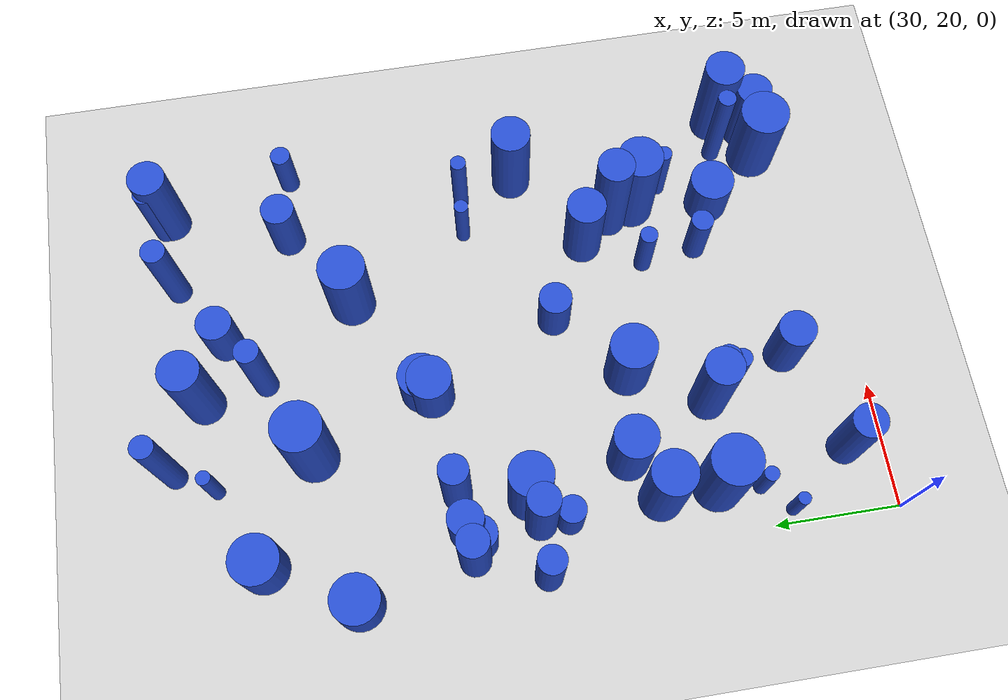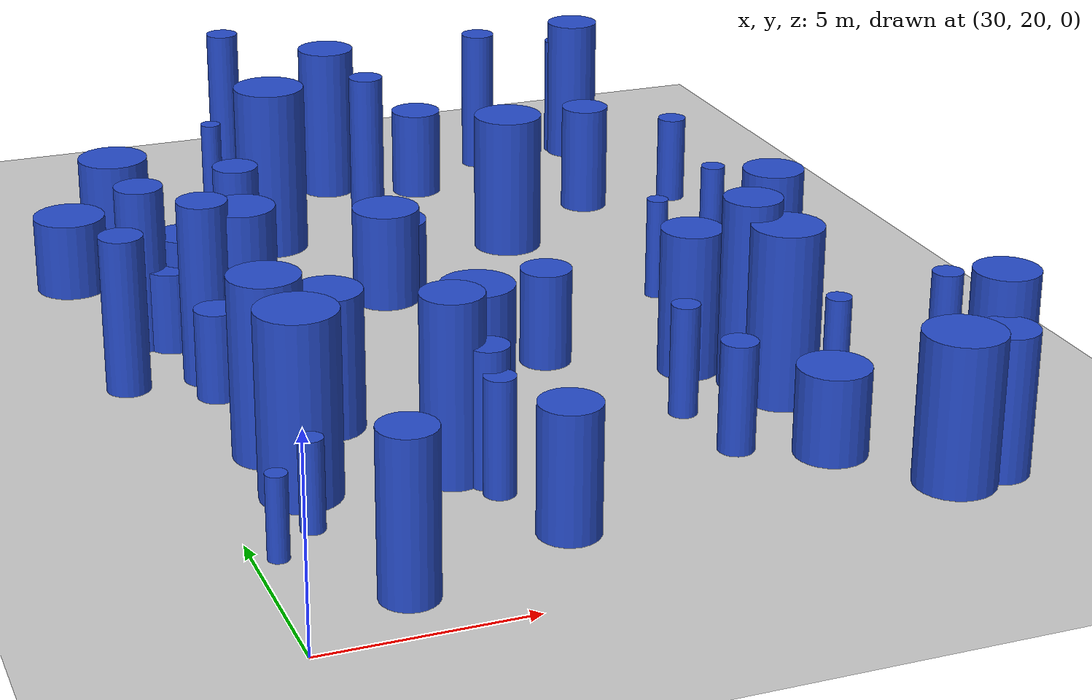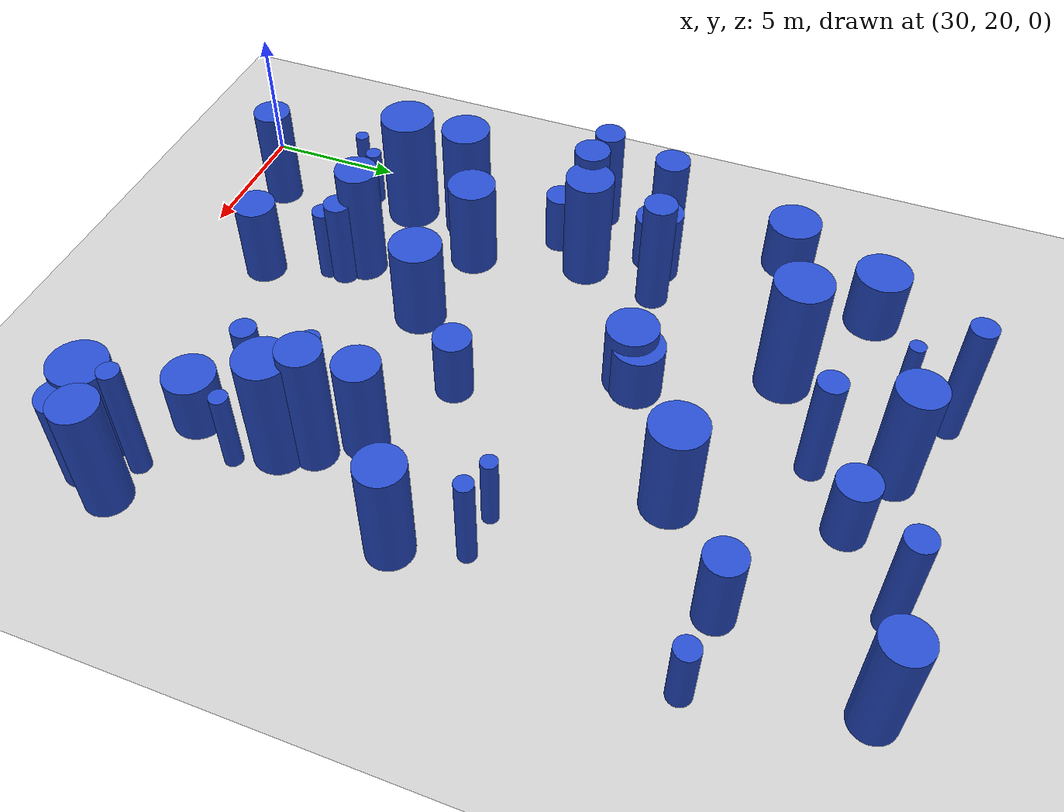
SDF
<sdf version="1.6">
 <world name="default">
  <model name="ground_plane">
   <static>1</static>
   <link name="link">
    <collision name="collision">
     <geometry><plane><normal>0 0 1</normal><size>100 100</size></plane></geometry>
     <surface><friction><ode><mu>100</mu><mu2>50</mu2></ode></friction></surface>
    </collision>
    <visual name="visual">
     <cast_shadows>0</cast_shadows>
     <geometry><plane><normal>0 0 1</normal><size>100 100</size></plane></geometry>
     <material>
      <script><uri>file://media/materials/scripts/gazebo.material</uri><name>Gazebo/Grey</name></script>
     </material>
    </visual>
   </link>
  </model>
  <model name="1">
   <static>0</static>
   <link name="link">
    <inertial>
     <mass>2</mass>
     <inertia><ixx>1.42291</ixx><ixy>0</ixy><ixz>0</ixz><iyy>1.42291</iyy><iyz>0</iyz><izz>0.128584</izz></inertia>
    </inertial>
    <collision name="collision">
     <geometry><cylinder><length>2.85512</length><radius>0.358586</radius></cylinder></geometry>
     <surface><contact><collide_without_contact>1</collide_without_contact></contact></surface>
    </collision>
    <visual name="visual">
     <geometry><cylinder><length>2.85512</length><radius>0.358586</radius></cylinder></geometry>
     <material>
      <script><uri>file://media/materials/scripts/gazebo.material</uri><name>Gazebo/Blue</name></script>
     </material>
    </visual>
    <gravity>0</gravity>
   </link>
   <pose>41.7752 27.9235 1.42756 0 -0 0</pose>
  </model>
  <model name="3">
   <static>0</static>
   <link name="link">
    <inertial>
     <mass>2</mass>
     <inertia><ixx>1.32488</ixx><ixy>0</ixy><ixz>0</ixz><iyy>1.32488</iyy><iyz>0</iyz><izz>0.51786</izz></inertia>
    </inertial>
    <collision name="collision">
     <geometry><cylinder><length>2.52897</length><radius>0.719625</radius></cylinder></geometry>
     <surface><contact><collide_without_contact>1</collide_without_contact></contact></surface>
    </collision>
    <visual name="visual">
     <geometry><cylinder><length>2.52897</length><radius>0.719625</radius></cylinder></geometry>
     <material>
      <script><uri>file://media/materials/scripts/gazebo.material</uri><name>Gazebo/Blue</name></script>
     </material>
    </visual>
    <gravity>0</gravity>
   </link>
   <pose>40.9199 45.4642 1.26449 0 -0 0</pose>
  </model>
  <model name="7">
   <static>0</static>
   <link name="link">
    <inertial>
     <mass>2</mass>
     <inertia><ixx>1.55105</ixx><ixy>0</ixy><ixz>0</ixz><iyy>1.55105</iyy><iyz>0</iyz><izz>0.812849</izz></inertia>
    </inertial>
    <collision name="collision">
     <geometry><cylinder><length>2.62064</length><radius>0.901581</radius></cylinder></geometry>
     <surface><contact><collide_without_contact>1</collide_without_contact></contact></surface>
    </collision>
    <visual name="visual">
     <geometry><cylinder><length>2.62064</length><radius>0.901581</radius></cylinder></geometry>
     <material>
      <script><uri>file://media/materials/scripts/gazebo.material</uri><name>Gazebo/Blue</name></script>
     </material>
    </visual>
    <gravity>0</gravity>
   </link>
   <pose>37.3399 37.4414 1.31032 0 -0 0</pose>
  </model>
  <model name="19">
   <static>0</static>
   <link name="link">
    <inertial>
     <mass>2</mass>
     <inertia><ixx>3.44669</ixx><ixy>0</ixy><ixz>0</ixz><iyy>3.44669</iyy><iyz>0</iyz><izz>0.34216</izz></inertia>
    </inertial>
    <collision name="collision">
     <geometry><cylinder><length>4.43325</length><radius>0.584945</radius></cylinder></geometry>
     <surface><contact><collide_without_contact>1</collide_without_contact></contact></surface>
    </collision>
    <visual name="visual">
     <geometry><cylinder><length>4.43325</length><radius>0.584945</radius></cylinder></geometry>
     <material>
      <script><uri>file://media/materials/scripts/gazebo.material</uri><name>Gazebo/Blue</name></script>
     </material>
    </visual>
    <gravity>0</gravity>
   </link>
   <pose>33.1585 37.0156 2.21662 0 -0 0</pose>
  </model>
  <model name="20">
   <static>0</static>
   <link name="link">
    <inertial>
     <mass>2</mass>
     <inertia><ixx>2.14927</ixx><ixy>0</ixy><ixz>0</ixz><iyy>2.14927</iyy><iyz>0</iyz><izz>0.10024</izz></inertia>
    </inertial>
    <collision name="collision">
     <geometry><cylinder><length>3.54893</length><radius>0.316606</radius></cylinder></geometry>
     <surface><contact><collide_without_contact>1</collide_without_contact></contact></surface>
    </collision>
    <visual name="visual">
     <geometry><cylinder><length>3.54893</length><radius>0.316606</radius></cylinder></geometry>
     <material>
      <script><uri>file://media/materials/scripts/gazebo.material</uri><name>Gazebo/Blue</name></script>
     </material>
    </visual>
    <gravity>0</gravity>
   </link>
   <pose>45.8173 35.0316 1.77447 0 -0 0</pose>
  </model>
  <model name="21">
   <static>0</static>
   <link name="link">
    <inertial>
     <mass>2</mass>
     <inertia><ixx>2.07639</ixx><ixy>0</ixy><ixz>0</ixz><iyy>2.07639</iyy><iyz>0</iyz><izz>0.241004</izz></inertia>
    </inertial>
    <collision name="collision">
     <geometry><cylinder><length>3.42569</length><radius>0.490922</radius></cylinder></geometry>
     <surface><contact><collide_without_contact>1</collide_without_contact></contact></surface>
    </collision>
    <visual name="visual">
     <geometry><cylinder><length>3.42569</length><radius>0.490922</radius></cylinder></geometry>
     <material>
      <script><uri>file://media/materials/scripts/gazebo.material</uri><name>Gazebo/Blue</name></script>
     </material>
    </visual>
    <gravity>0</gravity>
   </link>
   <pose>36.0554 26.0454 1.71284 0 -0 0</pose>
  </model>
  <model name="32">
   <static>0</static>
   <link name="link">
    <inertial>
     <mass>2</mass>
     <inertia><ixx>4.32118</ixx><ixy>0</ixy><ixz>0</ixz><iyy>4.32118</iyy><iyz>0</iyz><izz>0.545109</izz></inertia>
    </inertial>
    <collision name="collision">
     <geometry><cylinder><length>4.92867</length><radius>0.738315</radius></cylinder></geometry>
     <surface><contact><collide_without_contact>1</collide_without_contact></contact></surface>
    </collision>
    <visual name="visual">
     <geometry><cylinder><length>4.92867</length><radius>0.738315</radius></cylinder></geometry>
     <material>
      <script><uri>file://media/materials/scripts/gazebo.material</uri><name>Gazebo/Blue</name></script>
     </material>
    </visual>
    <gravity>0</gravity>
   </link>
   <pose>43.9927 28.992 2.46433 0 -0 0</pose>
  </model>
  <model name="33">
   <static>0</static>
   <link name="link">
    <inertial>
     <mass>2</mass>
     <inertia><ixx>1.18232</ixx><ixy>0</ixy><ixz>0</ixz><iyy>1.18232</iyy><iyz>0</iyz><izz>0.933247</izz></inertia>
    </inertial>
    <collision name="collision">
     <geometry><cylinder><length>2.07224</length><radius>0.966047</radius></cylinder></geometry>
     <surface><contact><collide_without_contact>1</collide_without_contact></contact></surface>
    </collision>
    <visual name="visual">
     <geometry><cylinder><length>2.07224</length><radius>0.966047</radius></cylinder></geometry>
     <material>
      <script><uri>file://media/materials/scripts/gazebo.material</uri><name>Gazebo/Blue</name></script>
     </material>
    </visual>
    <gravity>0</gravity>
   </link>
   <pose>29.552 41.2584 1.03612 0 -0 0</pose>
  </model>
  <model name="34">
   <static>0</static>
   <link name="link">
    <inertial>
     <mass>2</mass>
     <inertia><ixx>3.25336</ixx><ixy>0</ixy><ixz>0</ixz><iyy>3.25336</iyy><iyz>0</iyz><izz>0.568015</izz></inertia>
    </inertial>
    <collision name="collision">
     <geometry><cylinder><length>4.22092</length><radius>0.753668</radius></cylinder></geometry>
     <surface><contact><collide_without_contact>1</collide_without_contact></contact></surface>
    </collision>
    <visual name="visual">
     <geometry><cylinder><length>4.22092</length><radius>0.753668</radius></cylinder></geometry>
     <material>
      <script><uri>file://media/materials/scripts/gazebo.material</uri><name>Gazebo/Blue</name></script>
     </material>
    </visual>
    <gravity>0</gravity>
   </link>
   <pose>46.7338 47.3062 2.11046 0 -0 0</pose>
  </model>
  <model name="35">
   <static>0</static>
   <link name="link">
    <inertial>
     <mass>2</mass>
     <inertia>
      <ixx>1.30378</ixx>
      <ixy>0</ixy>
      <ixz>0</ixz>
      <iyy>1.30378</iyy>
      <iyz>0</iyz>
      <izz>0.0818979</izz>
     </inertia>
    </inertial>
    <collision name="collision">
     <geometry><cylinder><length>2.75264</length><radius>0.286178</radius></cylinder></geometry>
     <surface><contact><collide_without_contact>1</collide_without_contact></contact></surface>
    </collision>
    <visual name="visual">
     <geometry><cylinder><length>2.75264</length><radius>0.286178</radius></cylinder></geometry>
     <material>
      <script><uri>file://media/materials/scripts/gazebo.material</uri><name>Gazebo/Blue</name></script>
     </material>
    </visual>
    <gravity>0</gravity>
   </link>
   <pose>44.2744 35.1639 1.37632 0 -0 0</pose>
  </model>
  <model name="48">
   <static>0</static>
   <link name="link">
    <inertial>
     <mass>2</mass>
     <inertia><ixx>1.60895</ixx><ixy>0</ixy><ixz>0</ixz><iyy>1.60895</iyy><iyz>0</iyz><izz>0.100304</izz></inertia>
    </inertial>
    <collision name="collision">
     <geometry><cylinder><length>3.05823</length><radius>0.316709</radius></cylinder></geometry>
     <surface><contact><collide_without_contact>1</collide_without_contact></contact></surface>
    </collision>
    <visual name="visual">
     <geometry><cylinder><length>3.05823</length><radius>0.316709</radius></cylinder></geometry>
     <material>
      <script><uri>file://media/materials/scripts/gazebo.material</uri><name>Gazebo/Blue</name></script>
     </material>
    </visual>
    <gravity>0</gravity>
   </link>
   <pose>45.1707 26.6144 1.52911 0 -0 0</pose>
  </model>
  <model name="53">
   <static>0</static>
   <link name="link">
    <inertial>
     <mass>2</mass>
     <inertia><ixx>3.78116</ixx><ixy>0</ixy><ixz>0</ixz><iyy>3.78116</iyy><iyz>0</iyz><izz>0.58004</izz></inertia>
    </inertial>
    <collision name="collision">
     <geometry><cylinder><length>4.57677</length><radius>0.761604</radius></cylinder></geometry>
     <surface><contact><collide_without_contact>1</collide_without_contact></contact></surface>
    </collision>
    <visual name="visual">
     <geometry><cylinder><length>4.57677</length><radius>0.761604</radius></cylinder></geometry>
     <material>
      <script><uri>file://media/materials/scripts/gazebo.material</uri><name>Gazebo/Blue</name></script>
     </material>
    </visual>
    <gravity>0</gravity>
   </link>
   <pose>35.376 26.5708 2.28839 0 -0 0</pose>
  </model>
  <model name="58">
   <static>0</static>
   <link name="link">
    <inertial>
     <mass>2</mass>
     <inertia><ixx>1.01116</ixx><ixy>0</ixy><ixz>0</ixz><iyy>1.01116</iyy><iyz>0</iyz><izz>0.471925</izz></inertia>
    </inertial>
    <collision name="collision">
     <geometry><cylinder><length>2.15666</length><radius>0.686968</radius></cylinder></geometry>
     <surface><contact><collide_without_contact>1</collide_without_contact></contact></surface>
    </collision>
    <visual name="visual">
     <geometry><cylinder><length>2.15666</length><radius>0.686968</radius></cylinder></geometry>
     <material>
      <script><uri>file://media/materials/scripts/gazebo.material</uri><name>Gazebo/Blue</name></script>
     </material>
    </visual>
    <gravity>0</gravity>
   </link>
   <pose>31.2002 36.402 1.07833 0 -0 0</pose>
  </model>
  <model name="63">
   <static>0</static>
   <link name="link">
    <inertial>
     <mass>2</mass>
     <inertia><ixx>3.52604</ixx><ixy>0</ixy><ixz>0</ixz><iyy>3.52604</iyy><iyz>0</iyz><izz>0.741918</izz></inertia>
    </inertial>
    <collision name="collision">
     <geometry><cylinder><length>4.35092</length><radius>0.861346</radius></cylinder></geometry>
     <surface><contact><collide_without_contact>1</collide_without_contact></contact></surface>
    </collision>
    <visual name="visual">
     <geometry><cylinder><length>4.35092</length><radius>0.861346</radius></cylinder></geometry>
     <material>
      <script><uri>file://media/materials/scripts/gazebo.material</uri><name>Gazebo/Blue</name></script>
     </material>
    </visual>
    <gravity>0</gravity>
   </link>
   <pose>32.5729 34.2745 2.17546 0 -0 0</pose>
  </model>
  <model name="64">
   <static>0</static>
   <link name="link">
    <inertial>
     <mass>2</mass>
     <inertia><ixx>2.96651</ixx><ixy>0</ixy><ixz>0</ixz><iyy>2.96651</iyy><iyz>0</iyz><izz>0.892374</izz></inertia>
    </inertial>
    <collision name="collision">
     <geometry><cylinder><length>3.88869</length><radius>0.944655</radius></cylinder></geometry>
     <surface><contact><collide_without_contact>1</collide_without_contact></contact></surface>
    </collision>
    <visual name="visual">
     <geometry><cylinder><length>3.88869</length><radius>0.944655</radius></cylinder></geometry>
     <material>
      <script><uri>file://media/materials/scripts/gazebo.material</uri><name>Gazebo/Blue</name></script>
     </material>
    </visual>
    <gravity>0</gravity>
   </link>
   <pose>41.8645 40.1542 1.94434 0 -0 0</pose>
  </model>
  <model name="68">
   <static>0</static>
   <link name="link">
    <inertial>
     <mass>2</mass>
     <inertia><ixx>2.41844</ixx><ixy>0</ixy><ixz>0</ixz><iyy>2.41844</iyy><iyz>0</iyz><izz>0.53192</izz></inertia>
    </inertial>
    <collision name="collision">
     <geometry><cylinder><length>3.59373</length><radius>0.729328</radius></cylinder></geometry>
     <surface><contact><collide_without_contact>1</collide_without_contact></contact></surface>
    </collision>
    <visual name="visual">
     <geometry><cylinder><length>3.59373</length><radius>0.729328</radius></cylinder></geometry>
     <material>
      <script><uri>file://media/materials/scripts/gazebo.material</uri><name>Gazebo/Blue</name></script>
     </material>
    </visual>
    <gravity>0</gravity>
   </link>
   <pose>47.2387 22.452 1.79686 0 -0 0</pose>
  </model>
  <model name="75">
   <static>0</static>
   <link name="link">
    <inertial>
     <mass>2</mass>
     <inertia>
      <ixx>1.12046</ixx>
      <ixy>0</ixy>
      <ixz>0</ixz>
      <iyy>1.12046</iyy>
      <iyz>0</iyz>
      <izz>0.0821955</izz>
     </inertia>
    </inertial>
    <collision name="collision">
     <geometry><cylinder><length>2.54483</length><radius>0.286698</radius></cylinder></geometry>
     <surface><contact><collide_without_contact>1</collide_without_contact></contact></surface>
    </collision>
    <visual name="visual">
     <geometry><cylinder><length>2.54483</length><radius>0.286698</radius></cylinder></geometry>
     <material>
      <script><uri>file://media/materials/scripts/gazebo.material</uri><name>Gazebo/Blue</name></script>
     </material>
    </visual>
    <gravity>0</gravity>
   </link>
   <pose>34.7912 46.2772 1.27241 0 -0 0</pose>
  </model>
  <model name="76">
   <static>0</static>
   <link name="link">
    <inertial>
     <mass>2</mass>
     <inertia><ixx>2.90704</ixx><ixy>0</ixy><ixz>0</ixz><iyy>2.90704</iyy><iyz>0</iyz><izz>0.308433</izz></inertia>
    </inertial>
    <collision name="collision">
     <geometry><cylinder><length>4.0641</length><radius>0.555368</radius></cylinder></geometry>
     <surface><contact><collide_without_contact>1</collide_without_contact></contact></surface>
    </collision>
    <visual name="visual">
     <geometry><cylinder><length>4.0641</length><radius>0.555368</radius></cylinder></geometry>
     <material>
      <script><uri>file://media/materials/scripts/gazebo.material</uri><name>Gazebo/Blue</name></script>
     </material>
    </visual>
    <gravity>0</gravity>
   </link>
   <pose>29.4935 34.03 2.03205 0 -0 0</pose>
  </model>
  <model name="79">
   <static>0</static>
   <link name="link">
    <inertial>
     <mass>2</mass>
     <inertia><ixx>1.49288</ixx><ixy>0</ixy><ixz>0</ixz><iyy>1.49288</iyy><iyz>0</iyz><izz>0.148529</izz></inertia>
    </inertial>
    <collision name="collision">
     <geometry><cylinder><length>2.91748</length><radius>0.385395</radius></cylinder></geometry>
     <surface><contact><collide_without_contact>1</collide_without_contact></contact></surface>
    </collision>
    <visual name="visual">
     <geometry><cylinder><length>2.91748</length><radius>0.385395</radius></cylinder></geometry>
     <material>
      <script><uri>file://media/materials/scripts/gazebo.material</uri><name>Gazebo/Blue</name></script>
     </material>
    </visual>
    <gravity>0</gravity>
   </link>
   <pose>36.0862 25.4242 1.45874 0 -0 0</pose>
  </model>
  <model name="80">
   <static>0</static>
   <link name="link">
    <inertial>
     <mass>2</mass>
     <inertia><ixx>3.80086</ixx><ixy>0</ixy><ixz>0</ixz><iyy>3.80086</iyy><iyz>0</iyz><izz>0.77804</izz></inertia>
    </inertial>
    <collision name="collision">
     <geometry><cylinder><length>4.52449</length><radius>0.882066</radius></cylinder></geometry>
     <surface><contact><collide_without_contact>1</collide_without_contact></contact></surface>
    </collision>
    <visual name="visual">
     <geometry><cylinder><length>4.52449</length><radius>0.882066</radius></cylinder></geometry>
     <material>
      <script><uri>file://media/materials/scripts/gazebo.material</uri><name>Gazebo/Blue</name></script>
     </material>
    </visual>
    <gravity>0</gravity>
   </link>
   <pose>31.7605 29.2102 2.26225 0 -0 0</pose>
  </model>
  <model name="87">
   <static>0</static>
   <link name="link">
    <inertial>
     <mass>2</mass>
     <inertia><ixx>1.2223</ixx><ixy>0</ixy><ixz>0</ixz><iyy>1.2223</iyy><iyz>0</iyz><izz>0.801071</izz></inertia>
    </inertial>
    <collision name="collision">
     <geometry><cylinder><length>2.2205</length><radius>0.895026</radius></cylinder></geometry>
     <surface><contact><collide_without_contact>1</collide_without_contact></contact></surface>
    </collision>
    <visual name="visual">
     <geometry><cylinder><length>2.2205</length><radius>0.895026</radius></cylinder></geometry>
     <material>
      <script><uri>file://media/materials/scripts/gazebo.material</uri><name>Gazebo/Blue</name></script>
     </material>
    </visual>
    <gravity>0</gravity>
   </link>
   <pose>44.0898 24.707 1.11025 0 -0 0</pose>
  </model>
  <model name="91">
   <static>0</static>
   <link name="link">
    <inertial>
     <mass>2</mass>
     <inertia>
      <ixx>0.882223</ixx>
      <ixy>0</ixy>
      <ixz>0</ixz>
      <iyy>0.882223</iyy>
      <iyz>0</iyz>
      <izz>0.0874614</izz>
     </inertia>
    </inertial>
    <collision name="collision">
     <geometry><cylinder><length>2.24298</length><radius>0.295739</radius></cylinder></geometry>
     <surface><contact><collide_without_contact>1</collide_without_contact></contact></surface>
    </collision>
    <visual name="visual">
     <geometry><cylinder><length>2.24298</length><radius>0.295739</radius></cylinder></geometry>
     <material>
      <script><uri>file://media/materials/scripts/gazebo.material</uri><name>Gazebo/Blue</name></script>
     </material>
    </visual>
    <gravity>0</gravity>
   </link>
   <pose>31.6263 25.2196 1.12149 0 -0 0</pose>
  </model>
  <model name="97">
   <static>0</static>
   <link name="link">
    <inertial>
     <mass>2</mass>
     <inertia><ixx>3.06542</ixx><ixy>0</ixy><ixz>0</ixz><iyy>3.06542</iyy><iyz>0</iyz><izz>0.237937</izz></inertia>
    </inertial>
    <collision name="collision">
     <geometry><cylinder><length>4.20461</length><radius>0.487788</radius></cylinder></geometry>
     <surface><contact><collide_without_contact>1</collide_without_contact></contact></surface>
    </collision>
    <visual name="visual">
     <geometry><cylinder><length>4.20461</length><radius>0.487788</radius></cylinder></geometry>
     <material>
      <script><uri>file://media/materials/scripts/gazebo.material</uri><name>Gazebo/Blue</name></script>
     </material>
    </visual>
    <gravity>0</gravity>
   </link>
   <pose>38.9002 43.9954 2.1023 0 -0 0</pose>
  </model>
  <model name="99">
   <static>0</static>
   <link name="link">
    <inertial>
     <mass>2</mass>
     <inertia><ixx>3.60206</ixx><ixy>0</ixy><ixz>0</ixz><iyy>3.60206</iyy><iyz>0</iyz><izz>0.658908</izz></inertia>
    </inertial>
    <collision name="collision">
     <geometry><cylinder><length>4.43121</length><radius>0.811731</radius></cylinder></geometry>
     <surface><contact><collide_without_contact>1</collide_without_contact></contact></surface>
    </collision>
    <visual name="visual">
     <geometry><cylinder><length>4.43121</length><radius>0.811731</radius></cylinder></geometry>
     <material>
      <script><uri>file://media/materials/scripts/gazebo.material</uri><name>Gazebo/Blue</name></script>
     </material>
    </visual>
    <gravity>0</gravity>
   </link>
   <pose>38.4414 46.4906 2.21561 0 -0 0</pose>
  </model>
  <model name="100">
   <static>0</static>
   <link name="link">
    <inertial>
     <mass>2</mass>
     <inertia><ixx>4.22866</ixx><ixy>0</ixy><ixz>0</ixz><iyy>4.22866</iyy><iyz>0</iyz><izz>0.960089</izz></inertia>
    </inertial>
    <collision name="collision">
     <geometry><cylinder><length>4.74254</length><radius>0.979841</radius></cylinder></geometry>
     <surface><contact><collide_without_contact>1</collide_without_contact></contact></surface>
    </collision>
    <visual name="visual">
     <geometry><cylinder><length>4.74254</length><radius>0.979841</radius></cylinder></geometry>
     <material>
      <script><uri>file://media/materials/scripts/gazebo.material</uri><name>Gazebo/Blue</name></script>
     </material>
    </visual>
    <gravity>0</gravity>
   </link>
   <pose>35.549 42.3674 2.37127 0 -0 0</pose>
  </model>
  <model name="101">
   <static>0</static>
   <link name="link">
    <inertial>
     <mass>2</mass>
     <inertia><ixx>2.22594</ixx><ixy>0</ixy><ixz>0</ixz><iyy>2.22594</iyy><iyz>0</iyz><izz>0.205713</izz></inertia>
    </inertial>
    <collision name="collision">
     <geometry><cylinder><length>3.5691</length><radius>0.453555</radius></cylinder></geometry>
     <surface><contact><collide_without_contact>1</collide_without_contact></contact></surface>
    </collision>
    <visual name="visual">
     <geometry><cylinder><length>3.5691</length><radius>0.453555</radius></cylinder></geometry>
     <material>
      <script><uri>file://media/materials/scripts/gazebo.material</uri><name>Gazebo/Blue</name></script>
     </material>
    </visual>
    <gravity>0</gravity>
   </link>
   <pose>46.4323 47.5985 1.78455 0 -0 0</pose>
  </model>
  <model name="102">
   <static>0</static>
   <link name="link">
    <inertial>
     <mass>2</mass>
     <inertia>
      <ixx>0.731561</ixx>
      <ixy>0</ixy>
      <ixz>0</ixz>
      <iyy>0.731561</iyy>
      <iyz>0</iyz>
      <izz>0.0647101</izz>
     </inertia>
    </inertial>
    <collision name="collision">
     <geometry><cylinder><length>2.04823</length><radius>0.254382</radius></cylinder></geometry>
     <surface><contact><collide_without_contact>1</collide_without_contact></contact></surface>
    </collision>
    <visual name="visual">
     <geometry><cylinder><length>2.04823</length><radius>0.254382</radius></cylinder></geometry>
     <material>
      <script><uri>file://media/materials/scripts/gazebo.material</uri><name>Gazebo/Blue</name></script>
     </material>
    </visual>
    <gravity>0</gravity>
   </link>
   <pose>30.5558 24.1859 1.02411 0 -0 0</pose>
  </model>
  <model name="104">
   <static>0</static>
   <link name="link">
    <inertial>
     <mass>2</mass>
     <inertia><ixx>3.9165</ixx><ixy>0</ixy><ixz>0</ixz><iyy>3.9165</iyy><iyz>0</iyz><izz>0.40346</izz></inertia>
    </inertial>
    <collision name="collision">
     <geometry><cylinder><length>4.72108</length><radius>0.635185</radius></cylinder></geometry>
     <surface><contact><collide_without_contact>1</collide_without_contact></contact></surface>
    </collision>
    <visual name="visual">
     <geometry><cylinder><length>4.72108</length><radius>0.635185</radius></cylinder></geometry>
     <material>
      <script><uri>file://media/materials/scripts/gazebo.material</uri><name>Gazebo/Blue</name></script>
     </material>
    </visual>
    <gravity>0</gravity>
   </link>
   <pose>31.5272 33.9944 2.36054 0 -0 0</pose>
  </model>
  <model name="117">
   <static>0</static>
   <link name="link">
    <inertial>
     <mass>2</mass>
     <inertia><ixx>3.83077</ixx><ixy>0</ixy><ixz>0</ixz><iyy>3.83077</iyy><iyz>0</iyz><izz>0.816156</izz></inertia>
    </inertial>
    <collision name="collision">
     <geometry><cylinder><length>4.53168</length><radius>0.903414</radius></cylinder></geometry>
     <surface><contact><collide_without_contact>1</collide_without_contact></contact></surface>
    </collision>
    <visual name="visual">
     <geometry><cylinder><length>4.53168</length><radius>0.903414</radius></cylinder></geometry>
     <material>
      <script><uri>file://media/materials/scripts/gazebo.material</uri><name>Gazebo/Blue</name></script>
     </material>
    </visual>
    <gravity>0</gravity>
   </link>
   <pose>44.4012 27.9009 2.26584 0 -0 0</pose>
  </model>
  <model name="122">
   <static>0</static>
   <link name="link">
    <inertial>
     <mass>2</mass>
     <inertia><ixx>3.29208</ixx><ixy>0</ixy><ixz>0</ixz><iyy>3.29208</iyy><iyz>0</iyz><izz>0.392404</izz></inertia>
    </inertial>
    <collision name="collision">
     <geometry><cylinder><length>4.30991</length><radius>0.626421</radius></cylinder></geometry>
     <surface><contact><collide_without_contact>1</collide_without_contact></contact></surface>
    </collision>
    <visual name="visual">
     <geometry><cylinder><length>4.30991</length><radius>0.626421</radius></cylinder></geometry>
     <material>
      <script><uri>file://media/materials/scripts/gazebo.material</uri><name>Gazebo/Blue</name></script>
     </material>
    </visual>
    <gravity>0</gravity>
   </link>
   <pose>30.545 36.7008 2.15495 0 -0 0</pose>
  </model>
  <model name="125">
   <static>0</static>
   <link name="link">
    <inertial>
     <mass>2</mass>
     <inertia><ixx>3.0237</ixx><ixy>0</ixy><ixz>0</ixz><iyy>3.0237</iyy><iyz>0</iyz><izz>0.240514</izz></inertia>
    </inertial>
    <collision name="collision">
     <geometry><cylinder><length>4.17381</length><radius>0.490422</radius></cylinder></geometry>
     <surface><contact><collide_without_contact>1</collide_without_contact></contact></surface>
    </collision>
    <visual name="visual">
     <geometry><cylinder><length>4.17381</length><radius>0.490422</radius></cylinder></geometry>
     <material>
      <script><uri>file://media/materials/scripts/gazebo.material</uri><name>Gazebo/Blue</name></script>
     </material>
    </visual>
    <gravity>0</gravity>
   </link>
   <pose>43.5516 47.2178 2.0869 0 -0 0</pose>
  </model>
  <model name="128">
   <static>0</static>
   <link name="link">
    <inertial>
     <mass>2</mass>
     <inertia><ixx>1.43318</ixx><ixy>0</ixy><ixz>0</ixz><iyy>1.43318</iyy><iyz>0</iyz><izz>0.965714</izz></inertia>
    </inertial>
    <collision name="collision">
     <geometry><cylinder><length>2.38787</length><radius>0.982708</radius></cylinder></geometry>
     <surface><contact><collide_without_contact>1</collide_without_contact></contact></surface>
    </collision>
    <visual name="visual">
     <geometry><cylinder><length>2.38787</length><radius>0.982708</radius></cylinder></geometry>
     <material>
      <script><uri>file://media/materials/scripts/gazebo.material</uri><name>Gazebo/Blue</name></script>
     </material>
    </visual>
    <gravity>0</gravity>
   </link>
   <pose>31.5115 44.7196 1.19394 0 -0 0</pose>
  </model>
  <model name="138">
   <static>0</static>
   <link name="link">
    <inertial>
     <mass>2</mass>
     <inertia><ixx>3.16834</ixx><ixy>0</ixy><ixz>0</ixz><iyy>3.16834</iyy><iyz>0</iyz><izz>0.64621</izz></inertia>
    </inertial>
    <collision name="collision">
     <geometry><cylinder><length>4.13176</length><radius>0.803872</radius></cylinder></geometry>
     <surface><contact><collide_without_contact>1</collide_without_contact></contact></surface>
    </collision>
    <visual name="visual">
     <geometry><cylinder><length>4.13176</length><radius>0.803872</radius></cylinder></geometry>
     <material>
      <script><uri>file://media/materials/scripts/gazebo.material</uri><name>Gazebo/Blue</name></script>
     </material>
    </visual>
    <gravity>0</gravity>
   </link>
   <pose>46.4667 32.7789 2.06588 0 -0 0</pose>
  </model>
  <model name="140">
   <static>0</static>
   <link name="link">
    <inertial>
     <mass>2</mass>
     <inertia><ixx>3.96038</ixx><ixy>0</ixy><ixz>0</ixz><iyy>3.96038</iyy><iyz>0</iyz><izz>0.962462</izz></inertia>
    </inertial>
    <collision name="collision">
     <geometry><cylinder><length>4.5689</length><radius>0.981051</radius></cylinder></geometry>
     <surface><contact><collide_without_contact>1</collide_without_contact></contact></surface>
    </collision>
    <visual name="visual">
     <geometry><cylinder><length>4.5689</length><radius>0.981051</radius></cylinder></geometry>
     <material>
      <script><uri>file://media/materials/scripts/gazebo.material</uri><name>Gazebo/Blue</name></script>
     </material>
    </visual>
    <gravity>0</gravity>
   </link>
   <pose>31.8637 26.9192 2.28445 0 -0 0</pose>
  </model>
  <model name="143">
   <static>0</static>
   <link name="link">
    <inertial>
     <mass>2</mass>
     <inertia><ixx>3.93473</ixx><ixy>0</ixy><ixz>0</ixz><iyy>3.93473</iyy><iyz>0</iyz><izz>0.206258</izz></inertia>
    </inertial>
    <collision name="collision">
     <geometry><cylinder><length>4.79475</length><radius>0.454157</radius></cylinder></geometry>
     <surface><contact><collide_without_contact>1</collide_without_contact></contact></surface>
    </collision>
    <visual name="visual">
     <geometry><cylinder><length>4.79475</length><radius>0.454157</radius></cylinder></geometry>
     <material>
      <script><uri>file://media/materials/scripts/gazebo.material</uri><name>Gazebo/Blue</name></script>
     </material>
    </visual>
    <gravity>0</gravity>
   </link>
   <pose>35.6397 47.8653 2.39737 0 -0 0</pose>
  </model>
  <model name="155">
   <static>0</static>
   <link name="link">
    <inertial>
     <mass>2</mass>
     <inertia><ixx>1.12011</ixx><ixy>0</ixy><ixz>0</ixz><iyy>1.12011</iyy><iyz>0</iyz><izz>0.166165</izz></inertia>
    </inertial>
    <collision name="collision">
     <geometry><cylinder><length>2.49443</length><radius>0.407633</radius></cylinder></geometry>
     <surface><contact><collide_without_contact>1</collide_without_contact></contact></surface>
    </collision>
    <visual name="visual">
     <geometry><cylinder><length>2.49443</length><radius>0.407633</radius></cylinder></geometry>
     <material>
      <script><uri>file://media/materials/scripts/gazebo.material</uri><name>Gazebo/Blue</name></script>
     </material>
    </visual>
    <gravity>0</gravity>
   </link>
   <pose>47.8927 42.2093 1.24721 0 -0 0</pose>
  </model>
  <model name="157">
   <static>0</static>
   <link name="link">
    <inertial>
     <mass>2</mass>
     <inertia><ixx>3.46825</ixx><ixy>0</ixy><ixz>0</ixz><iyy>3.46825</iyy><iyz>0</iyz><izz>0.134053</izz></inertia>
    </inertial>
    <collision name="collision">
     <geometry><cylinder><length>4.51745</length><radius>0.366133</radius></cylinder></geometry>
     <surface><contact><collide_without_contact>1</collide_without_contact></contact></surface>
    </collision>
    <visual name="visual">
     <geometry><cylinder><length>4.51745</length><radius>0.366133</radius></cylinder></geometry>
     <material>
      <script><uri>file://media/materials/scripts/gazebo.material</uri><name>Gazebo/Blue</name></script>
     </material>
    </visual>
    <gravity>0</gravity>
   </link>
   <pose>46.4594 23.9461 2.25872 0 -0 0</pose>
  </model>
  <model name="162">
   <static>0</static>
   <link name="link">
    <inertial>
     <mass>2</mass>
     <inertia><ixx>2.49064</ixx><ixy>0</ixy><ixz>0</ixz><iyy>2.49064</iyy><iyz>0</iyz><izz>0.753027</izz></inertia>
    </inertial>
    <collision name="collision">
     <geometry><cylinder><length>3.56157</length><radius>0.867771</radius></cylinder></geometry>
     <surface><contact><collide_without_contact>1</collide_without_contact></contact></surface>
    </collision>
    <visual name="visual">
     <geometry><cylinder><length>3.56157</length><radius>0.867771</radius></cylinder></geometry>
     <material>
      <script><uri>file://media/materials/scripts/gazebo.material</uri><name>Gazebo/Blue</name></script>
     </material>
    </visual>
    <gravity>0</gravity>
   </link>
   <pose>33.5253 30.1542 1.78078 0 -0 0</pose>
  </model>
  <model name="181">
   <static>0</static>
   <link name="link">
    <inertial>
     <mass>2</mass>
     <inertia><ixx>1.37707</ixx><ixy>0</ixy><ixz>0</ixz><iyy>1.37707</iyy><iyz>0</iyz><izz>0.203434</izz></inertia>
    </inertial>
    <collision name="collision">
     <geometry><cylinder><length>2.76625</length><radius>0.451036</radius></cylinder></geometry>
     <surface><contact><collide_without_contact>1</collide_without_contact></contact></surface>
    </collision>
    <visual name="visual">
     <geometry><cylinder><length>2.76625</length><radius>0.451036</radius></cylinder></geometry>
     <material>
      <script><uri>file://media/materials/scripts/gazebo.material</uri><name>Gazebo/Blue</name></script>
     </material>
    </visual>
    <gravity>0</gravity>
   </link>
   <pose>42.1011 25.6486 1.38312 0 -0 0</pose>
  </model>
  <model name="182">
   <static>0</static>
   <link name="link">
    <inertial>
     <mass>2</mass>
     <inertia><ixx>2.82944</ixx><ixy>0</ixy><ixz>0</ixz><iyy>2.82944</iyy><iyz>0</iyz><izz>0.978961</izz></inertia>
    </inertial>
    <collision name="collision">
     <geometry><cylinder><length>3.74697</length><radius>0.989425</radius></cylinder></geometry>
     <surface><contact><collide_without_contact>1</collide_without_contact></contact></surface>
    </collision>
    <visual name="visual">
     <geometry><cylinder><length>3.74697</length><radius>0.989425</radius></cylinder></geometry>
     <material>
      <script><uri>file://media/materials/scripts/gazebo.material</uri><name>Gazebo/Blue</name></script>
     </material>
    </visual>
    <gravity>0</gravity>
   </link>
   <pose>46.0089 22.3169 1.87348 0 -0 0</pose>
  </model>
  <model name="189">
   <static>0</static>
   <link name="link">
    <inertial>
     <mass>2</mass>
     <inertia><ixx>1.79435</ixx><ixy>0</ixy><ixz>0</ixz><iyy>1.79435</iyy><iyz>0</iyz><izz>0.448999</izz></inertia>
    </inertial>
    <collision name="collision">
     <geometry><cylinder><length>3.06906</length><radius>0.670074</radius></cylinder></geometry>
     <surface><contact><collide_without_contact>1</collide_without_contact></contact></surface>
    </collision>
    <visual name="visual">
     <geometry><cylinder><length>3.06906</length><radius>0.670074</radius></cylinder></geometry>
     <material>
      <script><uri>file://media/materials/scripts/gazebo.material</uri><name>Gazebo/Blue</name></script>
     </material>
    </visual>
    <gravity>0</gravity>
   </link>
   <pose>45.1791 42.4775 1.53453 0 -0 0</pose>
  </model>
  <model name="194">
   <static>0</static>
   <link name="link">
    <inertial>
     <mass>2</mass>
     <inertia><ixx>1.04865</ixx><ixy>0</ixy><ixz>0</ixz><iyy>1.04865</iyy><iyz>0</iyz><izz>0.294135</izz></inertia>
    </inertial>
    <collision name="collision">
     <geometry><cylinder><length>2.32583</length><radius>0.542342</radius></cylinder></geometry>
     <surface><contact><collide_without_contact>1</collide_without_contact></contact></surface>
    </collision>
    <visual name="visual">
     <geometry><cylinder><length>2.32583</length><radius>0.542342</radius></cylinder></geometry>
     <material>
      <script><uri>file://media/materials/scripts/gazebo.material</uri><name>Gazebo/Blue</name></script>
     </material>
    </visual>
    <gravity>0</gravity>
   </link>
   <pose>31.4851 32.8556 1.16291 0 -0 0</pose>
  </model>
  <model name="202">
   <static>0</static>
   <link name="link">
    <inertial>
     <mass>2</mass>
     <inertia><ixx>1.59909</ixx><ixy>0</ixy><ixz>0</ixz><iyy>1.59909</iyy><iyz>0</iyz><izz>0.511426</izz></inertia>
    </inertial>
    <collision name="collision">
     <geometry><cylinder><length>2.83907</length><radius>0.71514</radius></cylinder></geometry>
     <surface><contact><collide_without_contact>1</collide_without_contact></contact></surface>
    </collision>
    <visual name="visual">
     <geometry><cylinder><length>2.83907</length><radius>0.71514</radius></cylinder></geometry>
     <material>
      <script><uri>file://media/materials/scripts/gazebo.material</uri><name>Gazebo/Blue</name></script>
     </material>
    </visual>
    <gravity>0</gravity>
   </link>
   <pose>31.6839 36.8491 1.41953 0 -0 0</pose>
  </model>
  <model name="204">
   <static>0</static>
   <link name="link">
    <inertial>
     <mass>2</mass>
     <inertia><ixx>1.18468</ixx><ixy>0</ixy><ixz>0</ixz><iyy>1.18468</iyy><iyz>0</iyz><izz>0.842136</izz></inertia>
    </inertial>
    <collision name="collision">
     <geometry><cylinder><length>2.14048</length><radius>0.91768</radius></cylinder></geometry>
     <surface><contact><collide_without_contact>1</collide_without_contact></contact></surface>
    </collision>
    <visual name="visual">
     <geometry><cylinder><length>2.14048</length><radius>0.91768</radius></cylinder></geometry>
     <material>
      <script><uri>file://media/materials/scripts/gazebo.material</uri><name>Gazebo/Blue</name></script>
     </material>
    </visual>
    <gravity>0</gravity>
   </link>
   <pose>37.629 37.7614 1.07024 0 -0 0</pose>
  </model>
  <model name="216">
   <static>0</static>
   <link name="link">
    <inertial>
     <mass>2</mass>
     <inertia><ixx>2.82168</ixx><ixy>0</ixy><ixz>0</ixz><iyy>2.82168</iyy><iyz>0</iyz><izz>0.463222</izz></inertia>
    </inertial>
    <collision name="collision">
     <geometry><cylinder><length>3.94213</length><radius>0.680604</radius></cylinder></geometry>
     <surface><contact><collide_without_contact>1</collide_without_contact></contact></surface>
    </collision>
    <visual name="visual">
     <geometry><cylinder><length>3.94213</length><radius>0.680604</radius></cylinder></geometry>
     <material>
      <script><uri>file://media/materials/scripts/gazebo.material</uri><name>Gazebo/Blue</name></script>
     </material>
    </visual>
    <gravity>0</gravity>
   </link>
   <pose>32.6505 21.6134 1.97106 0 -0 0</pose>
  </model>
  <model name="218">
   <static>0</static>
   <link name="link">
    <inertial>
     <mass>2</mass>
     <inertia><ixx>2.39991</ixx><ixy>0</ixy><ixz>0</ixz><iyy>2.39991</iyy><iyz>0</iyz><izz>0.867982</izz></inertia>
    </inertial>
    <collision name="collision">
     <geometry><cylinder><length>3.43446</length><radius>0.931655</radius></cylinder></geometry>
     <surface><contact><collide_without_contact>1</collide_without_contact></contact></surface>
    </collision>
    <visual name="visual">
     <geometry><cylinder><length>3.43446</length><radius>0.931655</radius></cylinder></geometry>
     <material>
      <script><uri>file://media/materials/scripts/gazebo.material</uri><name>Gazebo/Blue</name></script>
     </material>
    </visual>
    <gravity>0</gravity>
   </link>
   <pose>37.0542 29.5337 1.71723 0 -0 0</pose>
  </model>
  <model name="222">
   <static>0</static>
   <link name="link">
    <inertial>
     <mass>2</mass>
     <inertia><ixx>1.93129</ixx><ixy>0</ixy><ixz>0</ixz><iyy>1.93129</iyy><iyz>0</iyz><izz>0.551165</izz></inertia>
    </inertial>
    <collision name="collision">
     <geometry><cylinder><length>3.15186</length><radius>0.742405</radius></cylinder></geometry>
     <surface><contact><collide_without_contact>1</collide_without_contact></contact></surface>
    </collision>
    <visual name="visual">
     <geometry><cylinder><length>3.15186</length><radius>0.742405</radius></cylinder></geometry>
     <material>
      <script><uri>file://media/materials/scripts/gazebo.material</uri><name>Gazebo/Blue</name></script>
     </material>
    </visual>
    <gravity>0</gravity>
   </link>
   <pose>36.8387 23.1165 1.57593 0 -0 0</pose>
  </model>
  <model name="223">
   <static>0</static>
   <link name="link">
    <inertial>
     <mass>2</mass>
     <inertia><ixx>1.28319</ixx><ixy>0</ixy><ixz>0</ixz><iyy>1.28319</iyy><iyz>0</iyz><izz>0.441798</izz></inertia>
    </inertial>
    <collision name="collision">
     <geometry><cylinder><length>2.52463</length><radius>0.664679</radius></cylinder></geometry>
     <surface><contact><collide_without_contact>1</collide_without_contact></contact></surface>
    </collision>
    <visual name="visual">
     <geometry><cylinder><length>2.52463</length><radius>0.664679</radius></cylinder></geometry>
     <material>
      <script><uri>file://media/materials/scripts/gazebo.material</uri><name>Gazebo/Blue</name></script>
     </material>
    </visual>
    <gravity>0</gravity>
   </link>
   <pose>39.8236 32.0498 1.26231 0 -0 0</pose>
  </model>
  <model name="230">
   <static>0</static>
   <link name="link">
    <inertial>
     <mass>2</mass>
     <inertia><ixx>3.64776</ixx><ixy>0</ixy><ixz>0</ixz><iyy>3.64776</iyy><iyz>0</iyz><izz>0.643686</izz></inertia>
    </inertial>
    <collision name="collision">
     <geometry><cylinder><length>4.46716</length><radius>0.8023</radius></cylinder></geometry>
     <surface><contact><collide_without_contact>1</collide_without_contact></contact></surface>
    </collision>
    <visual name="visual">
     <geometry><cylinder><length>4.46716</length><radius>0.8023</radius></cylinder></geometry>
     <material>
      <script><uri>file://media/materials/scripts/gazebo.material</uri><name>Gazebo/Blue</name></script>
     </material>
    </visual>
    <gravity>0</gravity>
   </link>
   <pose>47.8741 23.7045 2.23358 0 -0 0</pose>
  </model>
  <model name="238">
   <static>0</static>
   <link name="link">
    <inertial>
     <mass>2</mass>
     <inertia><ixx>2.72336</ixx><ixy>0</ixy><ixz>0</ixz><iyy>2.72336</iyy><iyz>0</iyz><izz>0.618227</izz></inertia>
    </inertial>
    <collision name="collision">
     <geometry><cylinder><length>3.80598</length><radius>0.786274</radius></cylinder></geometry>
     <surface><contact><collide_without_contact>1</collide_without_contact></contact></surface>
    </collision>
    <visual name="visual">
     <geometry><cylinder><length>3.80598</length><radius>0.786274</radius></cylinder></geometry>
     <material>
      <script><uri>file://media/materials/scripts/gazebo.material</uri><name>Gazebo/Blue</name></script>
     </material>
    </visual>
    <gravity>0</gravity>
   </link>
   <pose>42.9998 30.2881 1.90299 0 -0 0</pose>
  </model>
 </world>
</sdf>
